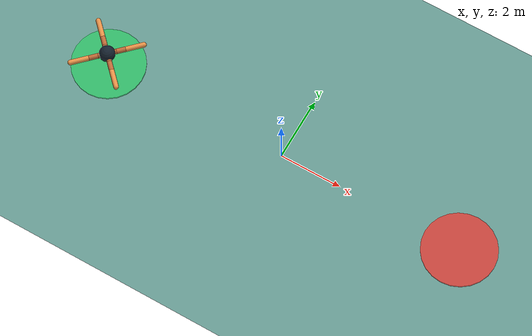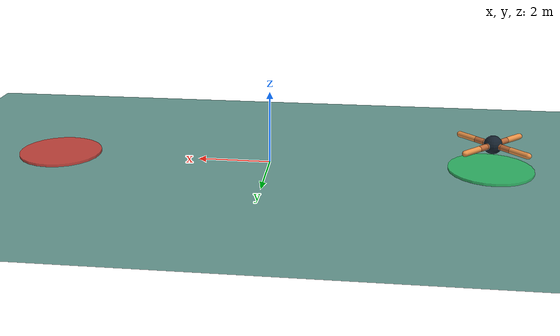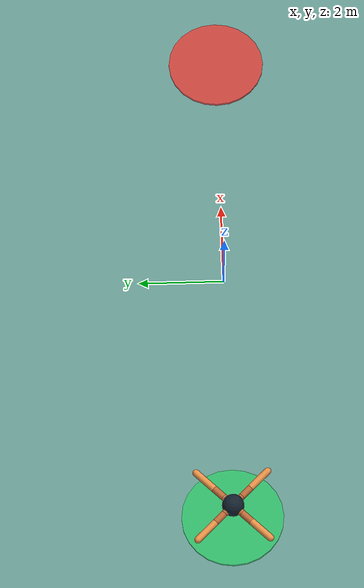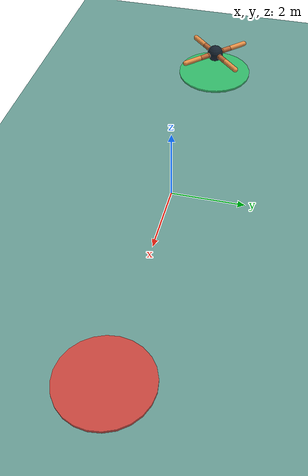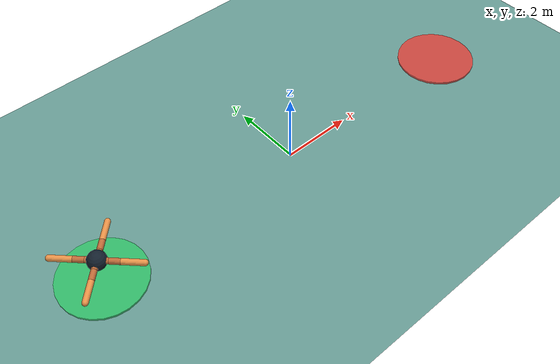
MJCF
<?xml version='1.0' encoding='utf-8'?>
<mujoco model="ant">
  <compiler angle="degree" coordinate="local" inertiafromgeom="true" />
  <option integrator="RK4" timestep="0.01" />
  <custom>
    <numeric data="0.0 0.0 0.55 1.0 0.0 0.0 0.0 0.0 1.0 0.0 -1.0 0.0 -1.0 0.0 1.0" name="init_qpos" />
  </custom>
  <default>
    <joint armature="1" damping="1" limited="true" />
    <geom conaffinity="0" condim="3" density="5.0" friction="1 0.5 0.5" margin="0.01" rgba="0.8 0.6 0.4 1" />
  </default>
  <asset>
    <texture builtin="gradient" height="100" rgb1="1 1 1" rgb2="0 0 0" type="skybox" width="100" />
    <texture builtin="flat" height="1278" mark="cross" markrgb="1 1 1" name="texgeom" random="0.01" rgb1="0.8 0.6 0.4" rgb2="0.8 0.6 0.4" type="cube" width="127" />
    <texture name="texplane" type="2d" file="terrain.png" />
    <material name="MatPlane" reflectance="0.06" shininess="0.10" specular="0.08" texrepeat="1 1" texture="texplane" />
    <material name="geom" texture="texgeom" texuniform="true" />
    <hfield name="terrain" file="terrain.hfield" size="10 10 1e-09 1" />
  </asset>
  <worldbody>
    <geom conaffinity="1" condim="3" material="MatPlane" name="floor" pos="0 0 0" rgba="0.40 0.60 0.57 1" type="plane" friction="1 0.5 0.5" contype="1" size="10 10 0.1" margin="0.01" />
    <body name="torso" pos="-6 0 0.75" quat="1 0 0 0">
      <camera name="track" mode="trackcom" pos="0 -3 0.3" xyaxes="1 0 0 0 0 1" />
      <geom name="torso_geom" pos="0 0 0" size="0.25" type="sphere" rgba="0.08 0.13 0.18 1" />
      <joint armature="0" damping="0" limited="false" margin="0.01" name="root" pos="0 0 0" type="free" />
      <body name="front_left_leg" pos="0 0 0">
        <geom fromto="0.0 0.0 0.0 0.2 0.2 0.0" name="aux_1_geom" size="0.08" type="capsule" rgba="0.75 0.42 0.22 1" />
        <body name="aux_1" pos="0.2 0.2 0">
          <joint axis="0 0 1" name="hip_1" pos="0.0 0.0 0.0" range="-30 30" type="hinge" />
          <geom fromto="0.0 0.0 0.0 0.2 0.2 0.0" name="left_leg_geom" size="0.08" type="capsule" rgba="0.75 0.42 0.22 1" />
          <body pos="0.2 0.2 0">
            <joint axis="-1 1 0" name="ankle_1" pos="0.0 0.0 0.0" range="30 70" type="hinge" />
            <geom fromto="0.0 0.0 0.0 0.4 0.4 0.0" name="left_ankle_geom" size="0.08" type="capsule" rgba="0.91 0.57 0.28 1" margin="0.01" />
          </body>
        </body>
      </body>
      <body name="front_right_leg" pos="0 0 0">
        <geom fromto="0.0 0.0 0.0 -0.2 0.2 0.0" name="aux_2_geom" size="0.08" type="capsule" rgba="0.75 0.42 0.22 1" />
        <body name="aux_2" pos="-0.2 0.2 0">
          <joint axis="0 0 1" name="hip_2" pos="0.0 0.0 0.0" range="-30 30" type="hinge" />
          <geom fromto="0.0 0.0 0.0 -0.2 0.2 0.0" name="right_leg_geom" size="0.08" type="capsule" rgba="0.75 0.42 0.22 1" />
          <body pos="-0.2 0.2 0">
            <joint axis="1 1 0" name="ankle_2" pos="0.0 0.0 0.0" range="-70 -30" type="hinge" />
            <geom fromto="0.0 0.0 0.0 -0.4 0.4 0.0" name="right_ankle_geom" size="0.08" type="capsule" rgba="0.91 0.57 0.28 1" margin="0.01" />
          </body>
        </body>
      </body>
      <body name="back_leg" pos="0 0 0">
        <geom fromto="0.0 0.0 0.0 -0.2 -0.2 0.0" name="aux_3_geom" size="0.08" type="capsule" rgba="0.75 0.42 0.22 1" />
        <body name="aux_3" pos="-0.2 -0.2 0">
          <joint axis="0 0 1" name="hip_3" pos="0.0 0.0 0.0" range="-30 30" type="hinge" />
          <geom fromto="0.0 0.0 0.0 -0.2 -0.2 0.0" name="back_leg_geom" size="0.08" type="capsule" rgba="0.75 0.42 0.22 1" />
          <body pos="-0.2 -0.2 0">
            <joint axis="-1 1 0" name="ankle_3" pos="0.0 0.0 0.0" range="-70 -30" type="hinge" />
            <geom fromto="0.0 0.0 0.0 -0.4 -0.4 0.0" name="third_ankle_geom" size="0.08" type="capsule" rgba="0.91 0.57 0.28 1" margin="0.01" />
          </body>
        </body>
      </body>
      <body name="right_back_leg" pos="0 0 0">
        <geom fromto="0.0 0.0 0.0 0.2 -0.2 0.0" name="aux_4_geom" size="0.08" type="capsule" rgba="0.75 0.42 0.22 1" />
        <body name="aux_4" pos="0.2 -0.2 0">
          <joint axis="0 0 1" name="hip_4" pos="0.0 0.0 0.0" range="-30 30" type="hinge" />
          <geom fromto="0.0 0.0 0.0 0.2 -0.2 0.0" name="rightback_leg_geom" size="0.08" type="capsule" rgba="0.75 0.42 0.22 1" />
          <body pos="0.2 -0.2 0">
            <joint axis="1 1 0" name="ankle_4" pos="0.0 0.0 0.0" range="30 70" type="hinge" />
            <geom fromto="0.0 0.0 0.0 0.4 -0.4 0.0" name="fourth_ankle_geom" size="0.08" type="capsule" rgba="0.91 0.57 0.28 1" margin="0.01" />
          </body>
        </body>
      </body>
    </body>
    <light directional="true" castshadow="true" pos="-18 -22 28" dir="0.55 0.43 -0.71" diffuse="0.86 0.84 0.78" specular="0.10 0.10 0.09" />
    <light directional="true" castshadow="false" pos="22 10 20" dir="-0.60 -0.20 -0.78" diffuse="0.22 0.29 0.34" specular="0.02 0.02 0.02" />
    <site name="fixed_start_marker" type="cylinder" pos="-6 0 0.04" size="1.15 0.035" rgba="0.20 0.78 0.42 0.85" group="2" />
    <site name="fixed_goal_marker" type="cylinder" pos="6 0 0.04" size="1.15 0.035" rgba="0.88 0.25 0.22 0.85" group="2" />
  </worldbody>
  <actuator>
    <motor ctrllimited="true" ctrlrange="-1.0 1.0" joint="hip_4" gear="150" />
    <motor ctrllimited="true" ctrlrange="-1.0 1.0" joint="ankle_4" gear="150" />
    <motor ctrllimited="true" ctrlrange="-1.0 1.0" joint="hip_1" gear="150" />
    <motor ctrllimited="true" ctrlrange="-1.0 1.0" joint="ankle_1" gear="150" />
    <motor ctrllimited="true" ctrlrange="-1.0 1.0" joint="hip_2" gear="150" />
    <motor ctrllimited="true" ctrlrange="-1.0 1.0" joint="ankle_2" gear="150" />
    <motor ctrllimited="true" ctrlrange="-1.0 1.0" joint="hip_3" gear="150" />
    <motor ctrllimited="true" ctrlrange="-1.0 1.0" joint="ankle_3" gear="150" />
  </actuator>
  <visual>
    <global offwidth="1280" offheight="720" />
    <quality shadowsize="4096" />
    <headlight ambient="0.26 0.28 0.29" diffuse="0.34 0.36 0.37" specular="0.05 0.05 0.05" />
    <rgba haze="0.87 0.92 0.94 1" />
  </visual>
</mujoco>
